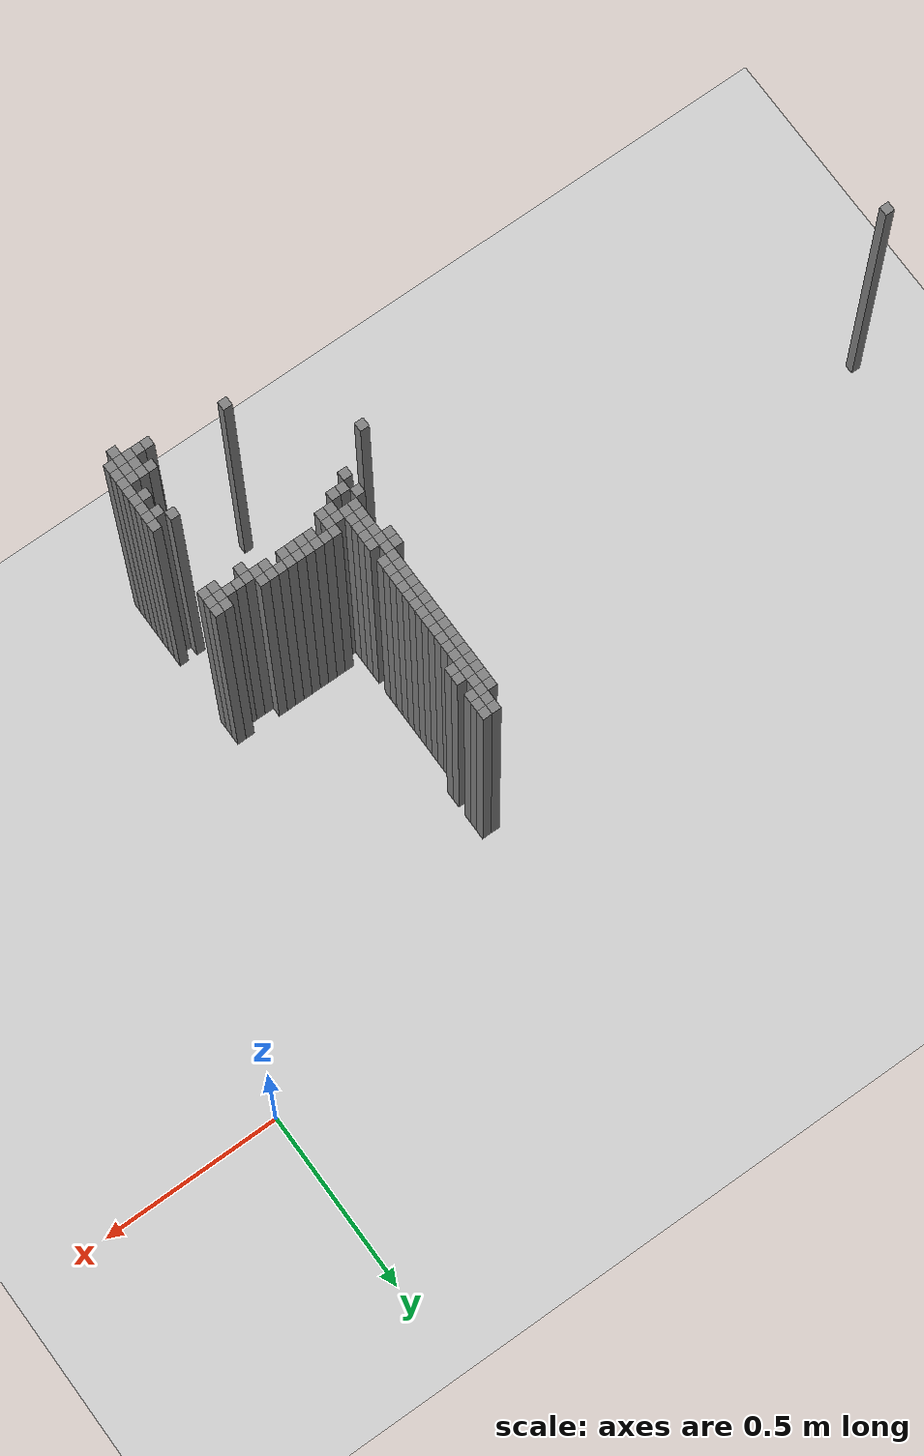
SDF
<sdf version="1.6">
 <world name="map_world">
  <include><uri>model://ground_plane</uri></include>
  <include><uri>model://sun</uri></include>
  <model name="obs_59_61">
   <static>true</static>
   <link name="link">
    <collision name="collision"><geometry><box><size>0.025 0.025 1.0</size></box></geometry></collision>
    <visual name="visual">
     <geometry><box><size>0.025 0.025 1.0</size></box></geometry>
     <material><ambient>0.5 0.5 0.5 1</ambient></material>
    </visual>
   </link>
   <pose>-0.851235 -0.29407099999999975 0.5 0 0 0</pose>
  </model>
  <model name="obs_60_61">
   <static>true</static>
   <link name="link">
    <collision name="collision"><geometry><box><size>0.025 0.025 1.0</size></box></geometry></collision>
    <visual name="visual">
     <geometry><box><size>0.025 0.025 1.0</size></box></geometry>
     <material><ambient>0.5 0.5 0.5 1</ambient></material>
    </visual>
   </link>
   <pose>-0.826235 -0.29407099999999975 0.5 0 0 0</pose>
  </model>
  <model name="obs_59_62">
   <static>true</static>
   <link name="link">
    <collision name="collision"><geometry><box><size>0.025 0.025 1.0</size></box></geometry></collision>
    <visual name="visual">
     <geometry><box><size>0.025 0.025 1.0</size></box></geometry>
     <material><ambient>0.5 0.5 0.5 1</ambient></material>
    </visual>
   </link>
   <pose>-0.851235 -0.3190709999999999 0.5 0 0 0</pose>
  </model>
  <model name="obs_60_62">
   <static>true</static>
   <link name="link">
    <collision name="collision"><geometry><box><size>0.025 0.025 1.0</size></box></geometry></collision>
    <visual name="visual">
     <geometry><box><size>0.025 0.025 1.0</size></box></geometry>
     <material><ambient>0.5 0.5 0.5 1</ambient></material>
    </visual>
   </link>
   <pose>-0.826235 -0.3190709999999999 0.5 0 0 0</pose>
  </model>
  <model name="obs_58_63">
   <static>true</static>
   <link name="link">
    <collision name="collision"><geometry><box><size>0.025 0.025 1.0</size></box></geometry></collision>
    <visual name="visual">
     <geometry><box><size>0.025 0.025 1.0</size></box></geometry>
     <material><ambient>0.5 0.5 0.5 1</ambient></material>
    </visual>
   </link>
   <pose>-0.8762349999999999 -0.3440709999999998 0.5 0 0 0</pose>
  </model>
  <model name="obs_59_63">
   <static>true</static>
   <link name="link">
    <collision name="collision"><geometry><box><size>0.025 0.025 1.0</size></box></geometry></collision>
    <visual name="visual">
     <geometry><box><size>0.025 0.025 1.0</size></box></geometry>
     <material><ambient>0.5 0.5 0.5 1</ambient></material>
    </visual>
   </link>
   <pose>-0.851235 -0.3440709999999998 0.5 0 0 0</pose>
  </model>
  <model name="obs_60_63">
   <static>true</static>
   <link name="link">
    <collision name="collision"><geometry><box><size>0.025 0.025 1.0</size></box></geometry></collision>
    <visual name="visual">
     <geometry><box><size>0.025 0.025 1.0</size></box></geometry>
     <material><ambient>0.5 0.5 0.5 1</ambient></material>
    </visual>
   </link>
   <pose>-0.826235 -0.3440709999999998 0.5 0 0 0</pose>
  </model>
  <model name="obs_58_64">
   <static>true</static>
   <link name="link">
    <collision name="collision"><geometry><box><size>0.025 0.025 1.0</size></box></geometry></collision>
    <visual name="visual">
     <geometry><box><size>0.025 0.025 1.0</size></box></geometry>
     <material><ambient>0.5 0.5 0.5 1</ambient></material>
    </visual>
   </link>
   <pose>-0.8762349999999999 -0.3690709999999999 0.5 0 0 0</pose>
  </model>
  <model name="obs_59_64">
   <static>true</static>
   <link name="link">
    <collision name="collision"><geometry><box><size>0.025 0.025 1.0</size></box></geometry></collision>
    <visual name="visual">
     <geometry><box><size>0.025 0.025 1.0</size></box></geometry>
     <material><ambient>0.5 0.5 0.5 1</ambient></material>
    </visual>
   </link>
   <pose>-0.851235 -0.3690709999999999 0.5 0 0 0</pose>
  </model>
  <model name="obs_58_65">
   <static>true</static>
   <link name="link">
    <collision name="collision"><geometry><box><size>0.025 0.025 1.0</size></box></geometry></collision>
    <visual name="visual">
     <geometry><box><size>0.025 0.025 1.0</size></box></geometry>
     <material><ambient>0.5 0.5 0.5 1</ambient></material>
    </visual>
   </link>
   <pose>-0.8762349999999999 -0.39407099999999984 0.5 0 0 0</pose>
  </model>
  <model name="obs_59_65">
   <static>true</static>
   <link name="link">
    <collision name="collision"><geometry><box><size>0.025 0.025 1.0</size></box></geometry></collision>
    <visual name="visual">
     <geometry><box><size>0.025 0.025 1.0</size></box></geometry>
     <material><ambient>0.5 0.5 0.5 1</ambient></material>
    </visual>
   </link>
   <pose>-0.851235 -0.39407099999999984 0.5 0 0 0</pose>
  </model>
  <model name="obs_60_65">
   <static>true</static>
   <link name="link">
    <collision name="collision"><geometry><box><size>0.025 0.025 1.0</size></box></geometry></collision>
    <visual name="visual">
     <geometry><box><size>0.025 0.025 1.0</size></box></geometry>
     <material><ambient>0.5 0.5 0.5 1</ambient></material>
    </visual>
   </link>
   <pose>-0.826235 -0.39407099999999984 0.5 0 0 0</pose>
  </model>
  <model name="obs_58_66">
   <static>true</static>
   <link name="link">
    <collision name="collision"><geometry><box><size>0.025 0.025 1.0</size></box></geometry></collision>
    <visual name="visual">
     <geometry><box><size>0.025 0.025 1.0</size></box></geometry>
     <material><ambient>0.5 0.5 0.5 1</ambient></material>
    </visual>
   </link>
   <pose>-0.8762349999999999 -0.41907099999999975 0.5 0 0 0</pose>
  </model>
  <model name="obs_59_66">
   <static>true</static>
   <link name="link">
    <collision name="collision"><geometry><box><size>0.025 0.025 1.0</size></box></geometry></collision>
    <visual name="visual">
     <geometry><box><size>0.025 0.025 1.0</size></box></geometry>
     <material><ambient>0.5 0.5 0.5 1</ambient></material>
    </visual>
   </link>
   <pose>-0.851235 -0.41907099999999975 0.5 0 0 0</pose>
  </model>
  <model name="obs_60_66">
   <static>true</static>
   <link name="link">
    <collision name="collision"><geometry><box><size>0.025 0.025 1.0</size></box></geometry></collision>
    <visual name="visual">
     <geometry><box><size>0.025 0.025 1.0</size></box></geometry>
     <material><ambient>0.5 0.5 0.5 1</ambient></material>
    </visual>
   </link>
   <pose>-0.826235 -0.41907099999999975 0.5 0 0 0</pose>
  </model>
  <model name="obs_58_67">
   <static>true</static>
   <link name="link">
    <collision name="collision"><geometry><box><size>0.025 0.025 1.0</size></box></geometry></collision>
    <visual name="visual">
     <geometry><box><size>0.025 0.025 1.0</size></box></geometry>
     <material><ambient>0.5 0.5 0.5 1</ambient></material>
    </visual>
   </link>
   <pose>-0.8762349999999999 -0.4440709999999999 0.5 0 0 0</pose>
  </model>
  <model name="obs_59_67">
   <static>true</static>
   <link name="link">
    <collision name="collision"><geometry><box><size>0.025 0.025 1.0</size></box></geometry></collision>
    <visual name="visual">
     <geometry><box><size>0.025 0.025 1.0</size></box></geometry>
     <material><ambient>0.5 0.5 0.5 1</ambient></material>
    </visual>
   </link>
   <pose>-0.851235 -0.4440709999999999 0.5 0 0 0</pose>
  </model>
  <model name="obs_58_68">
   <static>true</static>
   <link name="link">
    <collision name="collision"><geometry><box><size>0.025 0.025 1.0</size></box></geometry></collision>
    <visual name="visual">
     <geometry><box><size>0.025 0.025 1.0</size></box></geometry>
     <material><ambient>0.5 0.5 0.5 1</ambient></material>
    </visual>
   </link>
   <pose>-0.8762349999999999 -0.4690709999999998 0.5 0 0 0</pose>
  </model>
  <model name="obs_59_68">
   <static>true</static>
   <link name="link">
    <collision name="collision"><geometry><box><size>0.025 0.025 1.0</size></box></geometry></collision>
    <visual name="visual">
     <geometry><box><size>0.025 0.025 1.0</size></box></geometry>
     <material><ambient>0.5 0.5 0.5 1</ambient></material>
    </visual>
   </link>
   <pose>-0.851235 -0.4690709999999998 0.5 0 0 0</pose>
  </model>
  <model name="obs_58_69">
   <static>true</static>
   <link name="link">
    <collision name="collision"><geometry><box><size>0.025 0.025 1.0</size></box></geometry></collision>
    <visual name="visual">
     <geometry><box><size>0.025 0.025 1.0</size></box></geometry>
     <material><ambient>0.5 0.5 0.5 1</ambient></material>
    </visual>
   </link>
   <pose>-0.8762349999999999 -0.4940709999999999 0.5 0 0 0</pose>
  </model>
  <model name="obs_59_69">
   <static>true</static>
   <link name="link">
    <collision name="collision"><geometry><box><size>0.025 0.025 1.0</size></box></geometry></collision>
    <visual name="visual">
     <geometry><box><size>0.025 0.025 1.0</size></box></geometry>
     <material><ambient>0.5 0.5 0.5 1</ambient></material>
    </visual>
   </link>
   <pose>-0.851235 -0.4940709999999999 0.5 0 0 0</pose>
  </model>
  <model name="obs_58_70">
   <static>true</static>
   <link name="link">
    <collision name="collision"><geometry><box><size>0.025 0.025 1.0</size></box></geometry></collision>
    <visual name="visual">
     <geometry><box><size>0.025 0.025 1.0</size></box></geometry>
     <material><ambient>0.5 0.5 0.5 1</ambient></material>
    </visual>
   </link>
   <pose>-0.8762349999999999 -0.5190709999999998 0.5 0 0 0</pose>
  </model>
  <model name="obs_59_70">
   <static>true</static>
   <link name="link">
    <collision name="collision"><geometry><box><size>0.025 0.025 1.0</size></box></geometry></collision>
    <visual name="visual">
     <geometry><box><size>0.025 0.025 1.0</size></box></geometry>
     <material><ambient>0.5 0.5 0.5 1</ambient></material>
    </visual>
   </link>
   <pose>-0.851235 -0.5190709999999998 0.5 0 0 0</pose>
  </model>
  <model name="obs_58_71">
   <static>true</static>
   <link name="link">
    <collision name="collision"><geometry><box><size>0.025 0.025 1.0</size></box></geometry></collision>
    <visual name="visual">
     <geometry><box><size>0.025 0.025 1.0</size></box></geometry>
     <material><ambient>0.5 0.5 0.5 1</ambient></material>
    </visual>
   </link>
   <pose>-0.8762349999999999 -0.5440709999999997 0.5 0 0 0</pose>
  </model>
  <model name="obs_59_71">
   <static>true</static>
   <link name="link">
    <collision name="collision"><geometry><box><size>0.025 0.025 1.0</size></box></geometry></collision>
    <visual name="visual">
     <geometry><box><size>0.025 0.025 1.0</size></box></geometry>
     <material><ambient>0.5 0.5 0.5 1</ambient></material>
    </visual>
   </link>
   <pose>-0.851235 -0.5440709999999997 0.5 0 0 0</pose>
  </model>
  <model name="obs_58_72">
   <static>true</static>
   <link name="link">
    <collision name="collision"><geometry><box><size>0.025 0.025 1.0</size></box></geometry></collision>
    <visual name="visual">
     <geometry><box><size>0.025 0.025 1.0</size></box></geometry>
     <material><ambient>0.5 0.5 0.5 1</ambient></material>
    </visual>
   </link>
   <pose>-0.8762349999999999 -0.5690709999999999 0.5 0 0 0</pose>
  </model>
  <model name="obs_59_72">
   <static>true</static>
   <link name="link">
    <collision name="collision"><geometry><box><size>0.025 0.025 1.0</size></box></geometry></collision>
    <visual name="visual">
     <geometry><box><size>0.025 0.025 1.0</size></box></geometry>
     <material><ambient>0.5 0.5 0.5 1</ambient></material>
    </visual>
   </link>
   <pose>-0.851235 -0.5690709999999999 0.5 0 0 0</pose>
  </model>
  <model name="obs_58_73">
   <static>true</static>
   <link name="link">
    <collision name="collision"><geometry><box><size>0.025 0.025 1.0</size></box></geometry></collision>
    <visual name="visual">
     <geometry><box><size>0.025 0.025 1.0</size></box></geometry>
     <material><ambient>0.5 0.5 0.5 1</ambient></material>
    </visual>
   </link>
   <pose>-0.8762349999999999 -0.5940709999999998 0.5 0 0 0</pose>
  </model>
  <model name="obs_59_73">
   <static>true</static>
   <link name="link">
    <collision name="collision"><geometry><box><size>0.025 0.025 1.0</size></box></geometry></collision>
    <visual name="visual">
     <geometry><box><size>0.025 0.025 1.0</size></box></geometry>
     <material><ambient>0.5 0.5 0.5 1</ambient></material>
    </visual>
   </link>
   <pose>-0.851235 -0.5940709999999998 0.5 0 0 0</pose>
  </model>
  <model name="obs_58_74">
   <static>true</static>
   <link name="link">
    <collision name="collision"><geometry><box><size>0.025 0.025 1.0</size></box></geometry></collision>
    <visual name="visual">
     <geometry><box><size>0.025 0.025 1.0</size></box></geometry>
     <material><ambient>0.5 0.5 0.5 1</ambient></material>
    </visual>
   </link>
   <pose>-0.8762349999999999 -0.6190709999999999 0.5 0 0 0</pose>
  </model>
  <model name="obs_59_74">
   <static>true</static>
   <link name="link">
    <collision name="collision"><geometry><box><size>0.025 0.025 1.0</size></box></geometry></collision>
    <visual name="visual">
     <geometry><box><size>0.025 0.025 1.0</size></box></geometry>
     <material><ambient>0.5 0.5 0.5 1</ambient></material>
    </visual>
   </link>
   <pose>-0.851235 -0.6190709999999999 0.5 0 0 0</pose>
  </model>
  <model name="obs_58_75">
   <static>true</static>
   <link name="link">
    <collision name="collision"><geometry><box><size>0.025 0.025 1.0</size></box></geometry></collision>
    <visual name="visual">
     <geometry><box><size>0.025 0.025 1.0</size></box></geometry>
     <material><ambient>0.5 0.5 0.5 1</ambient></material>
    </visual>
   </link>
   <pose>-0.8762349999999999 -0.6440709999999998 0.5 0 0 0</pose>
  </model>
  <model name="obs_59_75">
   <static>true</static>
   <link name="link">
    <collision name="collision"><geometry><box><size>0.025 0.025 1.0</size></box></geometry></collision>
    <visual name="visual">
     <geometry><box><size>0.025 0.025 1.0</size></box></geometry>
     <material><ambient>0.5 0.5 0.5 1</ambient></material>
    </visual>
   </link>
   <pose>-0.851235 -0.6440709999999998 0.5 0 0 0</pose>
  </model>
  <model name="obs_58_76">
   <static>true</static>
   <link name="link">
    <collision name="collision"><geometry><box><size>0.025 0.025 1.0</size></box></geometry></collision>
    <visual name="visual">
     <geometry><box><size>0.025 0.025 1.0</size></box></geometry>
     <material><ambient>0.5 0.5 0.5 1</ambient></material>
    </visual>
   </link>
   <pose>-0.8762349999999999 -0.6690709999999997 0.5 0 0 0</pose>
  </model>
  <model name="obs_59_76">
   <static>true</static>
   <link name="link">
    <collision name="collision"><geometry><box><size>0.025 0.025 1.0</size></box></geometry></collision>
    <visual name="visual">
     <geometry><box><size>0.025 0.025 1.0</size></box></geometry>
     <material><ambient>0.5 0.5 0.5 1</ambient></material>
    </visual>
   </link>
   <pose>-0.851235 -0.6690709999999997 0.5 0 0 0</pose>
  </model>
  <model name="obs_58_77">
   <static>true</static>
   <link name="link">
    <collision name="collision"><geometry><box><size>0.025 0.025 1.0</size></box></geometry></collision>
    <visual name="visual">
     <geometry><box><size>0.025 0.025 1.0</size></box></geometry>
     <material><ambient>0.5 0.5 0.5 1</ambient></material>
    </visual>
   </link>
   <pose>-0.8762349999999999 -0.6940709999999999 0.5 0 0 0</pose>
  </model>
  <model name="obs_59_77">
   <static>true</static>
   <link name="link">
    <collision name="collision"><geometry><box><size>0.025 0.025 1.0</size></box></geometry></collision>
    <visual name="visual">
     <geometry><box><size>0.025 0.025 1.0</size></box></geometry>
     <material><ambient>0.5 0.5 0.5 1</ambient></material>
    </visual>
   </link>
   <pose>-0.851235 -0.6940709999999999 0.5 0 0 0</pose>
  </model>
  <model name="obs_58_78">
   <static>true</static>
   <link name="link">
    <collision name="collision"><geometry><box><size>0.025 0.025 1.0</size></box></geometry></collision>
    <visual name="visual">
     <geometry><box><size>0.025 0.025 1.0</size></box></geometry>
     <material><ambient>0.5 0.5 0.5 1</ambient></material>
    </visual>
   </link>
   <pose>-0.8762349999999999 -0.7190709999999998 0.5 0 0 0</pose>
  </model>
  <model name="obs_59_78">
   <static>true</static>
   <link name="link">
    <collision name="collision"><geometry><box><size>0.025 0.025 1.0</size></box></geometry></collision>
    <visual name="visual">
     <geometry><box><size>0.025 0.025 1.0</size></box></geometry>
     <material><ambient>0.5 0.5 0.5 1</ambient></material>
    </visual>
   </link>
   <pose>-0.851235 -0.7190709999999998 0.5 0 0 0</pose>
  </model>
  <model name="obs_1_79">
   <static>true</static>
   <link name="link">
    <collision name="collision"><geometry><box><size>0.025 0.025 1.0</size></box></geometry></collision>
    <visual name="visual">
     <geometry><box><size>0.025 0.025 1.0</size></box></geometry>
     <material><ambient>0.5 0.5 0.5 1</ambient></material>
    </visual>
   </link>
   <pose>-2.301235 -0.7440709999999999 0.5 0 0 0</pose>
  </model>
  <model name="obs_57_79">
   <static>true</static>
   <link name="link">
    <collision name="collision"><geometry><box><size>0.025 0.025 1.0</size></box></geometry></collision>
    <visual name="visual">
     <geometry><box><size>0.025 0.025 1.0</size></box></geometry>
     <material><ambient>0.5 0.5 0.5 1</ambient></material>
    </visual>
   </link>
   <pose>-0.901235 -0.7440709999999999 0.5 0 0 0</pose>
  </model>
  <model name="obs_58_79">
   <static>true</static>
   <link name="link">
    <collision name="collision"><geometry><box><size>0.025 0.025 1.0</size></box></geometry></collision>
    <visual name="visual">
     <geometry><box><size>0.025 0.025 1.0</size></box></geometry>
     <material><ambient>0.5 0.5 0.5 1</ambient></material>
    </visual>
   </link>
   <pose>-0.8762349999999999 -0.7440709999999999 0.5 0 0 0</pose>
  </model>
  <model name="obs_57_80">
   <static>true</static>
   <link name="link">
    <collision name="collision"><geometry><box><size>0.025 0.025 1.0</size></box></geometry></collision>
    <visual name="visual">
     <geometry><box><size>0.025 0.025 1.0</size></box></geometry>
     <material><ambient>0.5 0.5 0.5 1</ambient></material>
    </visual>
   </link>
   <pose>-0.901235 -0.7690709999999998 0.5 0 0 0</pose>
  </model>
  <model name="obs_58_80">
   <static>true</static>
   <link name="link">
    <collision name="collision"><geometry><box><size>0.025 0.025 1.0</size></box></geometry></collision>
    <visual name="visual">
     <geometry><box><size>0.025 0.025 1.0</size></box></geometry>
     <material><ambient>0.5 0.5 0.5 1</ambient></material>
    </visual>
   </link>
   <pose>-0.8762349999999999 -0.7690709999999998 0.5 0 0 0</pose>
  </model>
  <model name="obs_59_80">
   <static>true</static>
   <link name="link">
    <collision name="collision"><geometry><box><size>0.025 0.025 1.0</size></box></geometry></collision>
    <visual name="visual">
     <geometry><box><size>0.025 0.025 1.0</size></box></geometry>
     <material><ambient>0.5 0.5 0.5 1</ambient></material>
    </visual>
   </link>
   <pose>-0.851235 -0.7690709999999998 0.5 0 0 0</pose>
  </model>
  <model name="obs_58_81">
   <static>true</static>
   <link name="link">
    <collision name="collision"><geometry><box><size>0.025 0.025 1.0</size></box></geometry></collision>
    <visual name="visual">
     <geometry><box><size>0.025 0.025 1.0</size></box></geometry>
     <material><ambient>0.5 0.5 0.5 1</ambient></material>
    </visual>
   </link>
   <pose>-0.8762349999999999 -0.7940709999999997 0.5 0 0 0</pose>
  </model>
  <model name="obs_59_81">
   <static>true</static>
   <link name="link">
    <collision name="collision"><geometry><box><size>0.025 0.025 1.0</size></box></geometry></collision>
    <visual name="visual">
     <geometry><box><size>0.025 0.025 1.0</size></box></geometry>
     <material><ambient>0.5 0.5 0.5 1</ambient></material>
    </visual>
   </link>
   <pose>-0.851235 -0.7940709999999997 0.5 0 0 0</pose>
  </model>
  <model name="obs_58_82">
   <static>true</static>
   <link name="link">
    <collision name="collision"><geometry><box><size>0.025 0.025 1.0</size></box></geometry></collision>
    <visual name="visual">
     <geometry><box><size>0.025 0.025 1.0</size></box></geometry>
     <material><ambient>0.5 0.5 0.5 1</ambient></material>
    </visual>
   </link>
   <pose>-0.8762349999999999 -0.8190709999999999 0.5 0 0 0</pose>
  </model>
  <model name="obs_59_82">
   <static>true</static>
   <link name="link">
    <collision name="collision"><geometry><box><size>0.025 0.025 1.0</size></box></geometry></collision>
    <visual name="visual">
     <geometry><box><size>0.025 0.025 1.0</size></box></geometry>
     <material><ambient>0.5 0.5 0.5 1</ambient></material>
    </visual>
   </link>
   <pose>-0.851235 -0.8190709999999999 0.5 0 0 0</pose>
  </model>
  <model name="obs_58_83">
   <static>true</static>
   <link name="link">
    <collision name="collision"><geometry><box><size>0.025 0.025 1.0</size></box></geometry></collision>
    <visual name="visual">
     <geometry><box><size>0.025 0.025 1.0</size></box></geometry>
     <material><ambient>0.5 0.5 0.5 1</ambient></material>
    </visual>
   </link>
   <pose>-0.8762349999999999 -0.8440709999999998 0.5 0 0 0</pose>
  </model>
  <model name="obs_59_83">
   <static>true</static>
   <link name="link">
    <collision name="collision"><geometry><box><size>0.025 0.025 1.0</size></box></geometry></collision>
    <visual name="visual">
     <geometry><box><size>0.025 0.025 1.0</size></box></geometry>
     <material><ambient>0.5 0.5 0.5 1</ambient></material>
    </visual>
   </link>
   <pose>-0.851235 -0.8440709999999998 0.5 0 0 0</pose>
  </model>
  <model name="obs_61_83">
   <static>true</static>
   <link name="link">
    <collision name="collision"><geometry><box><size>0.025 0.025 1.0</size></box></geometry></collision>
    <visual name="visual">
     <geometry><box><size>0.025 0.025 1.0</size></box></geometry>
     <material><ambient>0.5 0.5 0.5 1</ambient></material>
    </visual>
   </link>
   <pose>-0.8012349999999999 -0.8440709999999998 0.5 0 0 0</pose>
  </model>
  <model name="obs_62_83">
   <static>true</static>
   <link name="link">
    <collision name="collision"><geometry><box><size>0.025 0.025 1.0</size></box></geometry></collision>
    <visual name="visual">
     <geometry><box><size>0.025 0.025 1.0</size></box></geometry>
     <material><ambient>0.5 0.5 0.5 1</ambient></material>
    </visual>
   </link>
   <pose>-0.776235 -0.8440709999999998 0.5 0 0 0</pose>
  </model>
  <model name="obs_63_83">
   <static>true</static>
   <link name="link">
    <collision name="collision"><geometry><box><size>0.025 0.025 1.0</size></box></geometry></collision>
    <visual name="visual">
     <geometry><box><size>0.025 0.025 1.0</size></box></geometry>
     <material><ambient>0.5 0.5 0.5 1</ambient></material>
    </visual>
   </link>
   <pose>-0.7512349999999999 -0.8440709999999998 0.5 0 0 0</pose>
  </model>
  <model name="obs_64_83">
   <static>true</static>
   <link name="link">
    <collision name="collision"><geometry><box><size>0.025 0.025 1.0</size></box></geometry></collision>
    <visual name="visual">
     <geometry><box><size>0.025 0.025 1.0</size></box></geometry>
     <material><ambient>0.5 0.5 0.5 1</ambient></material>
    </visual>
   </link>
   <pose>-0.726235 -0.8440709999999998 0.5 0 0 0</pose>
  </model>
  <model name="obs_65_83">
   <static>true</static>
   <link name="link">
    <collision name="collision"><geometry><box><size>0.025 0.025 1.0</size></box></geometry></collision>
    <visual name="visual">
     <geometry><box><size>0.025 0.025 1.0</size></box></geometry>
     <material><ambient>0.5 0.5 0.5 1</ambient></material>
    </visual>
   </link>
   <pose>-0.701235 -0.8440709999999998 0.5 0 0 0</pose>
  </model>
  <model name="obs_66_83">
   <static>true</static>
   <link name="link">
    <collision name="collision"><geometry><box><size>0.025 0.025 1.0</size></box></geometry></collision>
    <visual name="visual">
     <geometry><box><size>0.025 0.025 1.0</size></box></geometry>
     <material><ambient>0.5 0.5 0.5 1</ambient></material>
    </visual>
   </link>
   <pose>-0.6762349999999999 -0.8440709999999998 0.5 0 0 0</pose>
  </model>
  <model name="obs_67_83">
   <static>true</static>
   <link name="link">
    <collision name="collision"><geometry><box><size>0.025 0.025 1.0</size></box></geometry></collision>
    <visual name="visual">
     <geometry><box><size>0.025 0.025 1.0</size></box></geometry>
     <material><ambient>0.5 0.5 0.5 1</ambient></material>
    </visual>
   </link>
   <pose>-0.651235 -0.8440709999999998 0.5 0 0 0</pose>
  </model>
  <model name="obs_68_83">
   <static>true</static>
   <link name="link">
    <collision name="collision"><geometry><box><size>0.025 0.025 1.0</size></box></geometry></collision>
    <visual name="visual">
     <geometry><box><size>0.025 0.025 1.0</size></box></geometry>
     <material><ambient>0.5 0.5 0.5 1</ambient></material>
    </visual>
   </link>
   <pose>-0.6262349999999999 -0.8440709999999998 0.5 0 0 0</pose>
  </model>
  <model name="obs_69_83">
   <static>true</static>
   <link name="link">
    <collision name="collision"><geometry><box><size>0.025 0.025 1.0</size></box></geometry></collision>
    <visual name="visual">
     <geometry><box><size>0.025 0.025 1.0</size></box></geometry>
     <material><ambient>0.5 0.5 0.5 1</ambient></material>
    </visual>
   </link>
   <pose>-0.601235 -0.8440709999999998 0.5 0 0 0</pose>
  </model>
  <model name="obs_73_83">
   <static>true</static>
   <link name="link">
    <collision name="collision"><geometry><box><size>0.025 0.025 1.0</size></box></geometry></collision>
    <visual name="visual">
     <geometry><box><size>0.025 0.025 1.0</size></box></geometry>
     <material><ambient>0.5 0.5 0.5 1</ambient></material>
    </visual>
   </link>
   <pose>-0.5012349999999999 -0.8440709999999998 0.5 0 0 0</pose>
  </model>
  <model name="obs_74_83">
   <static>true</static>
   <link name="link">
    <collision name="collision"><geometry><box><size>0.025 0.025 1.0</size></box></geometry></collision>
    <visual name="visual">
     <geometry><box><size>0.025 0.025 1.0</size></box></geometry>
     <material><ambient>0.5 0.5 0.5 1</ambient></material>
    </visual>
   </link>
   <pose>-0.47623499999999996 -0.8440709999999998 0.5 0 0 0</pose>
  </model>
  <model name="obs_58_84">
   <static>true</static>
   <link name="link">
    <collision name="collision"><geometry><box><size>0.025 0.025 1.0</size></box></geometry></collision>
    <visual name="visual">
     <geometry><box><size>0.025 0.025 1.0</size></box></geometry>
     <material><ambient>0.5 0.5 0.5 1</ambient></material>
    </visual>
   </link>
   <pose>-0.8762349999999999 -0.8690709999999999 0.5 0 0 0</pose>
  </model>
  <model name="obs_59_84">
   <static>true</static>
   <link name="link">
    <collision name="collision"><geometry><box><size>0.025 0.025 1.0</size></box></geometry></collision>
    <visual name="visual">
     <geometry><box><size>0.025 0.025 1.0</size></box></geometry>
     <material><ambient>0.5 0.5 0.5 1</ambient></material>
    </visual>
   </link>
   <pose>-0.851235 -0.8690709999999999 0.5 0 0 0</pose>
  </model>
  <model name="obs_60_84">
   <static>true</static>
   <link name="link">
    <collision name="collision"><geometry><box><size>0.025 0.025 1.0</size></box></geometry></collision>
    <visual name="visual">
     <geometry><box><size>0.025 0.025 1.0</size></box></geometry>
     <material><ambient>0.5 0.5 0.5 1</ambient></material>
    </visual>
   </link>
   <pose>-0.826235 -0.8690709999999999 0.5 0 0 0</pose>
  </model>
  <model name="obs_61_84">
   <static>true</static>
   <link name="link">
    <collision name="collision"><geometry><box><size>0.025 0.025 1.0</size></box></geometry></collision>
    <visual name="visual">
     <geometry><box><size>0.025 0.025 1.0</size></box></geometry>
     <material><ambient>0.5 0.5 0.5 1</ambient></material>
    </visual>
   </link>
   <pose>-0.8012349999999999 -0.8690709999999999 0.5 0 0 0</pose>
  </model>
  <model name="obs_63_84">
   <static>true</static>
   <link name="link">
    <collision name="collision"><geometry><box><size>0.025 0.025 1.0</size></box></geometry></collision>
    <visual name="visual">
     <geometry><box><size>0.025 0.025 1.0</size></box></geometry>
     <material><ambient>0.5 0.5 0.5 1</ambient></material>
    </visual>
   </link>
   <pose>-0.7512349999999999 -0.8690709999999999 0.5 0 0 0</pose>
  </model>
  <model name="obs_64_84">
   <static>true</static>
   <link name="link">
    <collision name="collision"><geometry><box><size>0.025 0.025 1.0</size></box></geometry></collision>
    <visual name="visual">
     <geometry><box><size>0.025 0.025 1.0</size></box></geometry>
     <material><ambient>0.5 0.5 0.5 1</ambient></material>
    </visual>
   </link>
   <pose>-0.726235 -0.8690709999999999 0.5 0 0 0</pose>
  </model>
  <model name="obs_65_84">
   <static>true</static>
   <link name="link">
    <collision name="collision"><geometry><box><size>0.025 0.025 1.0</size></box></geometry></collision>
    <visual name="visual">
     <geometry><box><size>0.025 0.025 1.0</size></box></geometry>
     <material><ambient>0.5 0.5 0.5 1</ambient></material>
    </visual>
   </link>
   <pose>-0.701235 -0.8690709999999999 0.5 0 0 0</pose>
  </model>
  <model name="obs_66_84">
   <static>true</static>
   <link name="link">
    <collision name="collision"><geometry><box><size>0.025 0.025 1.0</size></box></geometry></collision>
    <visual name="visual">
     <geometry><box><size>0.025 0.025 1.0</size></box></geometry>
     <material><ambient>0.5 0.5 0.5 1</ambient></material>
    </visual>
   </link>
   <pose>-0.6762349999999999 -0.8690709999999999 0.5 0 0 0</pose>
  </model>
  <model name="obs_68_84">
   <static>true</static>
   <link name="link">
    <collision name="collision"><geometry><box><size>0.025 0.025 1.0</size></box></geometry></collision>
    <visual name="visual">
     <geometry><box><size>0.025 0.025 1.0</size></box></geometry>
     <material><ambient>0.5 0.5 0.5 1</ambient></material>
    </visual>
   </link>
   <pose>-0.6262349999999999 -0.8690709999999999 0.5 0 0 0</pose>
  </model>
  <model name="obs_69_84">
   <static>true</static>
   <link name="link">
    <collision name="collision"><geometry><box><size>0.025 0.025 1.0</size></box></geometry></collision>
    <visual name="visual">
     <geometry><box><size>0.025 0.025 1.0</size></box></geometry>
     <material><ambient>0.5 0.5 0.5 1</ambient></material>
    </visual>
   </link>
   <pose>-0.601235 -0.8690709999999999 0.5 0 0 0</pose>
  </model>
  <model name="obs_70_84">
   <static>true</static>
   <link name="link">
    <collision name="collision"><geometry><box><size>0.025 0.025 1.0</size></box></geometry></collision>
    <visual name="visual">
     <geometry><box><size>0.025 0.025 1.0</size></box></geometry>
     <material><ambient>0.5 0.5 0.5 1</ambient></material>
    </visual>
   </link>
   <pose>-0.576235 -0.8690709999999999 0.5 0 0 0</pose>
  </model>
  <model name="obs_71_84">
   <static>true</static>
   <link name="link">
    <collision name="collision"><geometry><box><size>0.025 0.025 1.0</size></box></geometry></collision>
    <visual name="visual">
     <geometry><box><size>0.025 0.025 1.0</size></box></geometry>
     <material><ambient>0.5 0.5 0.5 1</ambient></material>
    </visual>
   </link>
   <pose>-0.5512349999999999 -0.8690709999999999 0.5 0 0 0</pose>
  </model>
  <model name="obs_72_84">
   <static>true</static>
   <link name="link">
    <collision name="collision"><geometry><box><size>0.025 0.025 1.0</size></box></geometry></collision>
    <visual name="visual">
     <geometry><box><size>0.025 0.025 1.0</size></box></geometry>
     <material><ambient>0.5 0.5 0.5 1</ambient></material>
    </visual>
   </link>
   <pose>-0.526235 -0.8690709999999999 0.5 0 0 0</pose>
  </model>
  <model name="obs_73_84">
   <static>true</static>
   <link name="link">
    <collision name="collision"><geometry><box><size>0.025 0.025 1.0</size></box></geometry></collision>
    <visual name="visual">
     <geometry><box><size>0.025 0.025 1.0</size></box></geometry>
     <material><ambient>0.5 0.5 0.5 1</ambient></material>
    </visual>
   </link>
   <pose>-0.5012349999999999 -0.8690709999999999 0.5 0 0 0</pose>
  </model>
  <model name="obs_74_84">
   <static>true</static>
   <link name="link">
    <collision name="collision"><geometry><box><size>0.025 0.025 1.0</size></box></geometry></collision>
    <visual name="visual">
     <geometry><box><size>0.025 0.025 1.0</size></box></geometry>
     <material><ambient>0.5 0.5 0.5 1</ambient></material>
    </visual>
   </link>
   <pose>-0.47623499999999996 -0.8690709999999999 0.5 0 0 0</pose>
  </model>
  <model name="obs_57_85">
   <static>true</static>
   <link name="link">
    <collision name="collision"><geometry><box><size>0.025 0.025 1.0</size></box></geometry></collision>
    <visual name="visual">
     <geometry><box><size>0.025 0.025 1.0</size></box></geometry>
     <material><ambient>0.5 0.5 0.5 1</ambient></material>
    </visual>
   </link>
   <pose>-0.901235 -0.8940709999999998 0.5 0 0 0</pose>
  </model>
  <model name="obs_60_85">
   <static>true</static>
   <link name="link">
    <collision name="collision"><geometry><box><size>0.025 0.025 1.0</size></box></geometry></collision>
    <visual name="visual">
     <geometry><box><size>0.025 0.025 1.0</size></box></geometry>
     <material><ambient>0.5 0.5 0.5 1</ambient></material>
    </visual>
   </link>
   <pose>-0.826235 -0.8940709999999998 0.5 0 0 0</pose>
  </model>
  <model name="obs_61_85">
   <static>true</static>
   <link name="link">
    <collision name="collision"><geometry><box><size>0.025 0.025 1.0</size></box></geometry></collision>
    <visual name="visual">
     <geometry><box><size>0.025 0.025 1.0</size></box></geometry>
     <material><ambient>0.5 0.5 0.5 1</ambient></material>
    </visual>
   </link>
   <pose>-0.8012349999999999 -0.8940709999999998 0.5 0 0 0</pose>
  </model>
  <model name="obs_70_85">
   <static>true</static>
   <link name="link">
    <collision name="collision"><geometry><box><size>0.025 0.025 1.0</size></box></geometry></collision>
    <visual name="visual">
     <geometry><box><size>0.025 0.025 1.0</size></box></geometry>
     <material><ambient>0.5 0.5 0.5 1</ambient></material>
    </visual>
   </link>
   <pose>-0.576235 -0.8940709999999998 0.5 0 0 0</pose>
  </model>
  <model name="obs_73_85">
   <static>true</static>
   <link name="link">
    <collision name="collision"><geometry><box><size>0.025 0.025 1.0</size></box></geometry></collision>
    <visual name="visual">
     <geometry><box><size>0.025 0.025 1.0</size></box></geometry>
     <material><ambient>0.5 0.5 0.5 1</ambient></material>
    </visual>
   </link>
   <pose>-0.5012349999999999 -0.8940709999999998 0.5 0 0 0</pose>
  </model>
  <model name="obs_74_85">
   <static>true</static>
   <link name="link">
    <collision name="collision"><geometry><box><size>0.025 0.025 1.0</size></box></geometry></collision>
    <visual name="visual">
     <geometry><box><size>0.025 0.025 1.0</size></box></geometry>
     <material><ambient>0.5 0.5 0.5 1</ambient></material>
    </visual>
   </link>
   <pose>-0.47623499999999996 -0.8940709999999998 0.5 0 0 0</pose>
  </model>
  <model name="obs_58_86">
   <static>true</static>
   <link name="link">
    <collision name="collision"><geometry><box><size>0.025 0.025 1.0</size></box></geometry></collision>
    <visual name="visual">
     <geometry><box><size>0.025 0.025 1.0</size></box></geometry>
     <material><ambient>0.5 0.5 0.5 1</ambient></material>
    </visual>
   </link>
   <pose>-0.8762349999999999 -0.919071 0.5 0 0 0</pose>
  </model>
  <model name="obs_59_86">
   <static>true</static>
   <link name="link">
    <collision name="collision"><geometry><box><size>0.025 0.025 1.0</size></box></geometry></collision>
    <visual name="visual">
     <geometry><box><size>0.025 0.025 1.0</size></box></geometry>
     <material><ambient>0.5 0.5 0.5 1</ambient></material>
    </visual>
   </link>
   <pose>-0.851235 -0.919071 0.5 0 0 0</pose>
  </model>
  <model name="obs_57_87">
   <static>true</static>
   <link name="link">
    <collision name="collision"><geometry><box><size>0.025 0.025 1.0</size></box></geometry></collision>
    <visual name="visual">
     <geometry><box><size>0.025 0.025 1.0</size></box></geometry>
     <material><ambient>0.5 0.5 0.5 1</ambient></material>
    </visual>
   </link>
   <pose>-0.901235 -0.9440709999999999 0.5 0 0 0</pose>
  </model>
  <model name="obs_53_90">
   <static>true</static>
   <link name="link">
    <collision name="collision"><geometry><box><size>0.025 0.025 1.0</size></box></geometry></collision>
    <visual name="visual">
     <geometry><box><size>0.025 0.025 1.0</size></box></geometry>
     <material><ambient>0.5 0.5 0.5 1</ambient></material>
    </visual>
   </link>
   <pose>-1.0012349999999999 -1.0190709999999998 0.5 0 0 0</pose>
  </model>
  <model name="obs_72_93">
   <static>true</static>
   <link name="link">
    <collision name="collision"><geometry><box><size>0.025 0.025 1.0</size></box></geometry></collision>
    <visual name="visual">
     <geometry><box><size>0.025 0.025 1.0</size></box></geometry>
     <material><ambient>0.5 0.5 0.5 1</ambient></material>
    </visual>
   </link>
   <pose>-0.526235 -1.094071 0.5 0 0 0</pose>
  </model>
  <model name="obs_74_93">
   <static>true</static>
   <link name="link">
    <collision name="collision"><geometry><box><size>0.025 0.025 1.0</size></box></geometry></collision>
    <visual name="visual">
     <geometry><box><size>0.025 0.025 1.0</size></box></geometry>
     <material><ambient>0.5 0.5 0.5 1</ambient></material>
    </visual>
   </link>
   <pose>-0.47623499999999996 -1.094071 0.5 0 0 0</pose>
  </model>
  <model name="obs_73_94">
   <static>true</static>
   <link name="link">
    <collision name="collision"><geometry><box><size>0.025 0.025 1.0</size></box></geometry></collision>
    <visual name="visual">
     <geometry><box><size>0.025 0.025 1.0</size></box></geometry>
     <material><ambient>0.5 0.5 0.5 1</ambient></material>
    </visual>
   </link>
   <pose>-0.5012349999999999 -1.119071 0.5 0 0 0</pose>
  </model>
  <model name="obs_74_94">
   <static>true</static>
   <link name="link">
    <collision name="collision"><geometry><box><size>0.025 0.025 1.0</size></box></geometry></collision>
    <visual name="visual">
     <geometry><box><size>0.025 0.025 1.0</size></box></geometry>
     <material><ambient>0.5 0.5 0.5 1</ambient></material>
    </visual>
   </link>
   <pose>-0.47623499999999996 -1.119071 0.5 0 0 0</pose>
  </model>
  <model name="obs_74_95">
   <static>true</static>
   <link name="link">
    <collision name="collision"><geometry><box><size>0.025 0.025 1.0</size></box></geometry></collision>
    <visual name="visual">
     <geometry><box><size>0.025 0.025 1.0</size></box></geometry>
     <material><ambient>0.5 0.5 0.5 1</ambient></material>
    </visual>
   </link>
   <pose>-0.47623499999999996 -1.1440709999999998 0.5 0 0 0</pose>
  </model>
  <model name="obs_73_96">
   <static>true</static>
   <link name="link">
    <collision name="collision"><geometry><box><size>0.025 0.025 1.0</size></box></geometry></collision>
    <visual name="visual">
     <geometry><box><size>0.025 0.025 1.0</size></box></geometry>
     <material><ambient>0.5 0.5 0.5 1</ambient></material>
    </visual>
   </link>
   <pose>-0.5012349999999999 -1.1690709999999997 0.5 0 0 0</pose>
  </model>
  <model name="obs_74_96">
   <static>true</static>
   <link name="link">
    <collision name="collision"><geometry><box><size>0.025 0.025 1.0</size></box></geometry></collision>
    <visual name="visual">
     <geometry><box><size>0.025 0.025 1.0</size></box></geometry>
     <material><ambient>0.5 0.5 0.5 1</ambient></material>
    </visual>
   </link>
   <pose>-0.47623499999999996 -1.1690709999999997 0.5 0 0 0</pose>
  </model>
  <model name="obs_74_97">
   <static>true</static>
   <link name="link">
    <collision name="collision"><geometry><box><size>0.025 0.025 1.0</size></box></geometry></collision>
    <visual name="visual">
     <geometry><box><size>0.025 0.025 1.0</size></box></geometry>
     <material><ambient>0.5 0.5 0.5 1</ambient></material>
    </visual>
   </link>
   <pose>-0.47623499999999996 -1.1940709999999999 0.5 0 0 0</pose>
  </model>
  <model name="obs_71_98">
   <static>true</static>
   <link name="link">
    <collision name="collision"><geometry><box><size>0.025 0.025 1.0</size></box></geometry></collision>
    <visual name="visual">
     <geometry><box><size>0.025 0.025 1.0</size></box></geometry>
     <material><ambient>0.5 0.5 0.5 1</ambient></material>
    </visual>
   </link>
   <pose>-0.5512349999999999 -1.219071 0.5 0 0 0</pose>
  </model>
  <model name="obs_72_98">
   <static>true</static>
   <link name="link">
    <collision name="collision"><geometry><box><size>0.025 0.025 1.0</size></box></geometry></collision>
    <visual name="visual">
     <geometry><box><size>0.025 0.025 1.0</size></box></geometry>
     <material><ambient>0.5 0.5 0.5 1</ambient></material>
    </visual>
   </link>
   <pose>-0.526235 -1.219071 0.5 0 0 0</pose>
  </model>
  <model name="obs_73_98">
   <static>true</static>
   <link name="link">
    <collision name="collision"><geometry><box><size>0.025 0.025 1.0</size></box></geometry></collision>
    <visual name="visual">
     <geometry><box><size>0.025 0.025 1.0</size></box></geometry>
     <material><ambient>0.5 0.5 0.5 1</ambient></material>
    </visual>
   </link>
   <pose>-0.5012349999999999 -1.219071 0.5 0 0 0</pose>
  </model>
  <model name="obs_74_98">
   <static>true</static>
   <link name="link">
    <collision name="collision"><geometry><box><size>0.025 0.025 1.0</size></box></geometry></collision>
    <visual name="visual">
     <geometry><box><size>0.025 0.025 1.0</size></box></geometry>
     <material><ambient>0.5 0.5 0.5 1</ambient></material>
    </visual>
   </link>
   <pose>-0.47623499999999996 -1.219071 0.5 0 0 0</pose>
  </model>
  <model name="obs_62_99">
   <static>true</static>
   <link name="link">
    <collision name="collision"><geometry><box><size>0.025 0.025 1.0</size></box></geometry></collision>
    <visual name="visual">
     <geometry><box><size>0.025 0.025 1.0</size></box></geometry>
     <material><ambient>0.5 0.5 0.5 1</ambient></material>
    </visual>
   </link>
   <pose>-0.776235 -1.244071 0.5 0 0 0</pose>
  </model>
  <model name="obs_72_99">
   <static>true</static>
   <link name="link">
    <collision name="collision"><geometry><box><size>0.025 0.025 1.0</size></box></geometry></collision>
    <visual name="visual">
     <geometry><box><size>0.025 0.025 1.0</size></box></geometry>
     <material><ambient>0.5 0.5 0.5 1</ambient></material>
    </visual>
   </link>
   <pose>-0.526235 -1.244071 0.5 0 0 0</pose>
  </model>
  <model name="obs_73_99">
   <static>true</static>
   <link name="link">
    <collision name="collision"><geometry><box><size>0.025 0.025 1.0</size></box></geometry></collision>
    <visual name="visual">
     <geometry><box><size>0.025 0.025 1.0</size></box></geometry>
     <material><ambient>0.5 0.5 0.5 1</ambient></material>
    </visual>
   </link>
   <pose>-0.5012349999999999 -1.244071 0.5 0 0 0</pose>
  </model>
  <model name="obs_74_99">
   <static>true</static>
   <link name="link">
    <collision name="collision"><geometry><box><size>0.025 0.025 1.0</size></box></geometry></collision>
    <visual name="visual">
     <geometry><box><size>0.025 0.025 1.0</size></box></geometry>
     <material><ambient>0.5 0.5 0.5 1</ambient></material>
    </visual>
   </link>
   <pose>-0.47623499999999996 -1.244071 0.5 0 0 0</pose>
  </model>
  <model name="obs_70_100">
   <static>true</static>
   <link name="link">
    <collision name="collision"><geometry><box><size>0.025 0.025 1.0</size></box></geometry></collision>
    <visual name="visual">
     <geometry><box><size>0.025 0.025 1.0</size></box></geometry>
     <material><ambient>0.5 0.5 0.5 1</ambient></material>
    </visual>
   </link>
   <pose>-0.576235 -1.2690709999999998 0.5 0 0 0</pose>
  </model>
  <model name="obs_71_100">
   <static>true</static>
   <link name="link">
    <collision name="collision"><geometry><box><size>0.025 0.025 1.0</size></box></geometry></collision>
    <visual name="visual">
     <geometry><box><size>0.025 0.025 1.0</size></box></geometry>
     <material><ambient>0.5 0.5 0.5 1</ambient></material>
    </visual>
   </link>
   <pose>-0.5512349999999999 -1.2690709999999998 0.5 0 0 0</pose>
  </model>
  <model name="obs_72_100">
   <static>true</static>
   <link name="link">
    <collision name="collision"><geometry><box><size>0.025 0.025 1.0</size></box></geometry></collision>
    <visual name="visual">
     <geometry><box><size>0.025 0.025 1.0</size></box></geometry>
     <material><ambient>0.5 0.5 0.5 1</ambient></material>
    </visual>
   </link>
   <pose>-0.526235 -1.2690709999999998 0.5 0 0 0</pose>
  </model>
  <model name="obs_73_100">
   <static>true</static>
   <link name="link">
    <collision name="collision"><geometry><box><size>0.025 0.025 1.0</size></box></geometry></collision>
    <visual name="visual">
     <geometry><box><size>0.025 0.025 1.0</size></box></geometry>
     <material><ambient>0.5 0.5 0.5 1</ambient></material>
    </visual>
   </link>
   <pose>-0.5012349999999999 -1.2690709999999998 0.5 0 0 0</pose>
  </model>
  <model name="obs_74_100">
   <static>true</static>
   <link name="link">
    <collision name="collision"><geometry><box><size>0.025 0.025 1.0</size></box></geometry></collision>
    <visual name="visual">
     <geometry><box><size>0.025 0.025 1.0</size></box></geometry>
     <material><ambient>0.5 0.5 0.5 1</ambient></material>
    </visual>
   </link>
   <pose>-0.47623499999999996 -1.2690709999999998 0.5 0 0 0</pose>
  </model>
  <model name="obs_73_101">
   <static>true</static>
   <link name="link">
    <collision name="collision"><geometry><box><size>0.025 0.025 1.0</size></box></geometry></collision>
    <visual name="visual">
     <geometry><box><size>0.025 0.025 1.0</size></box></geometry>
     <material><ambient>0.5 0.5 0.5 1</ambient></material>
    </visual>
   </link>
   <pose>-0.5012349999999999 -1.2940709999999997 0.5 0 0 0</pose>
  </model>
 </world>
</sdf>
